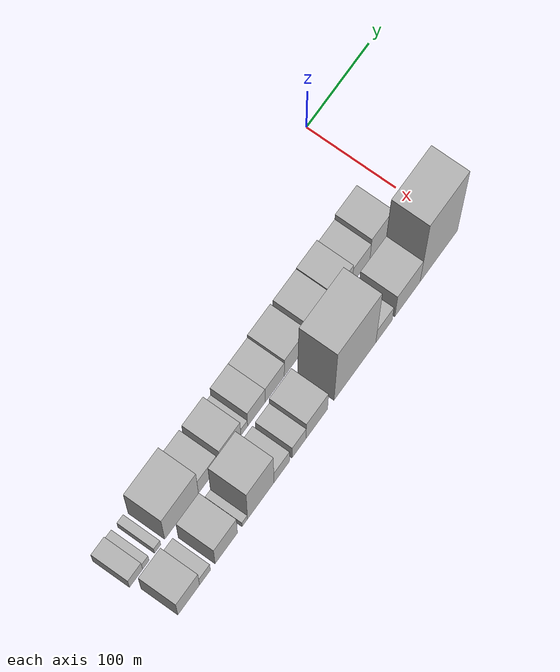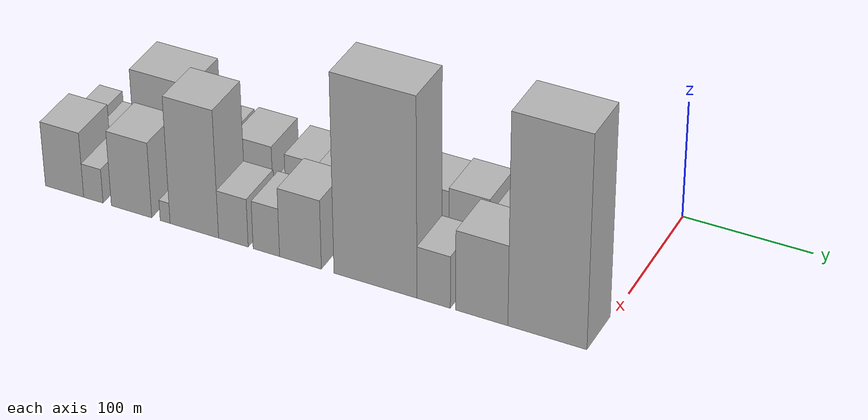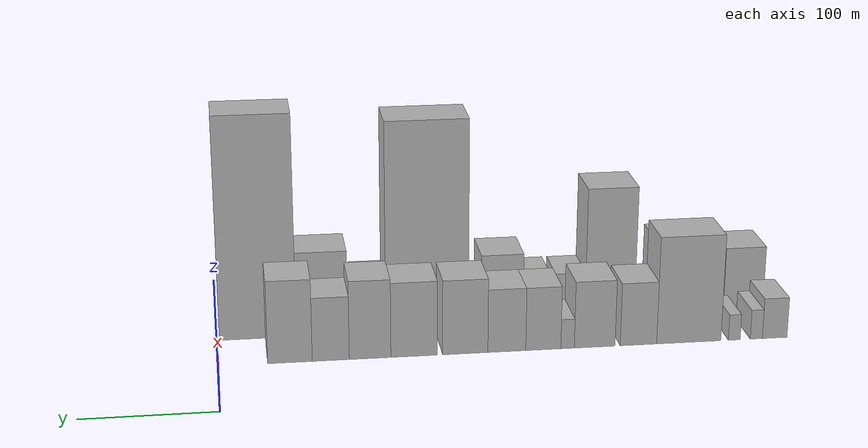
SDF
<sdf version="1.6">
 <world name="default">
  <model name="building_1">
   <static>1</static>
   <pose>100.0000 -428.1805 0 0.000000 0.000000 0.000000</pose>
   <link name="link">
    <pose>0 0 16.50 0 0 0</pose>
    <collision name="collision"><geometry><box><size>40.0000 19.6389 33.0000</size></box></geometry></collision>
    <visual name="visual">
     <cast_shadows>0</cast_shadows>
     <geometry><box><size>40.0000 19.6389 33.0000</size></box></geometry>
     <material>
      <script>
       <uri>model://HANNAS_wall/materials/scripts</uri>
       <uri>model://HANNAS_wall/materials/textures</uri>
       <name>vrc/HANNAS_wall</name>
      </script>
     </material>
    </visual>
   </link>
  </model>
  <model name="building_2">
   <static>1</static>
   <pose>100.0000 -413.5381 0 0.000000 0.000000 0.000000</pose>
   <link name="link">
    <pose>0 0 12.00 0 0 0</pose>
    <collision name="collision"><geometry><box><size>40.0000 9.6458 24.0000</size></box></geometry></collision>
    <visual name="visual">
     <cast_shadows>0</cast_shadows>
     <geometry><box><size>40.0000 9.6458 24.0000</size></box></geometry>
     <material>
      <script>
       <uri>model://HANNAS_wall/materials/scripts</uri>
       <uri>model://HANNAS_wall/materials/textures</uri>
       <name>vrc/HANNAS_wall</name>
      </script>
     </material>
    </visual>
   </link>
  </model>
  <model name="building_3">
   <static>1</static>
   <pose>100.0000 -396.0378 0 0.000000 0.000000 0.000000</pose>
   <link name="link">
    <pose>0 0 10.50 0 0 0</pose>
    <collision name="collision"><geometry><box><size>40.0000 9.3547 21.0000</size></box></geometry></collision>
    <visual name="visual">
     <cast_shadows>0</cast_shadows>
     <geometry><box><size>40.0000 9.3547 21.0000</size></box></geometry>
     <material>
      <script>
       <uri>model://HANNAS_wall/materials/scripts</uri>
       <uri>model://HANNAS_wall/materials/textures</uri>
       <name>vrc/HANNAS_wall</name>
      </script>
     </material>
    </visual>
   </link>
  </model>
  <model name="building_4">
   <static>1</static>
   <pose>100.0000 -360.0004 0 0.000000 0.000000 0.000000</pose>
   <link name="link">
    <pose>0 0 43.50 0 0 0</pose>
    <collision name="collision"><geometry><box><size>40.0000 50.7202 87.0000</size></box></geometry></collision>
    <visual name="visual">
     <cast_shadows>0</cast_shadows>
     <geometry><box><size>40.0000 50.7202 87.0000</size></box></geometry>
     <material>
      <script>
       <uri>model://HANNAS_wall/materials/scripts</uri>
       <uri>model://HANNAS_wall/materials/textures</uri>
       <name>vrc/HANNAS_wall</name>
      </script>
     </material>
    </visual>
   </link>
  </model>
  <model name="building_5">
   <static>1</static>
   <pose>100.0000 -320.3611 0 0.000000 0.000000 0.000000</pose>
   <link name="link">
    <pose>0 0 25.50 0 0 0</pose>
    <collision name="collision"><geometry><box><size>40.0000 28.5584 51.0000</size></box></geometry></collision>
    <visual name="visual">
     <cast_shadows>0</cast_shadows>
     <geometry><box><size>40.0000 28.5584 51.0000</size></box></geometry>
     <material>
      <script>
       <uri>model://HANNAS_wall/materials/scripts</uri>
       <uri>model://HANNAS_wall/materials/textures</uri>
       <name>vrc/HANNAS_wall</name>
      </script>
     </material>
    </visual>
   </link>
  </model>
  <model name="building_6">
   <static>1</static>
   <pose>100.0000 -286.1896 0 0.000000 0.000000 0.000000</pose>
   <link name="link">
    <pose>0 0 27.00 0 0 0</pose>
    <collision name="collision"><geometry><box><size>40.0000 31.7845 54.0000</size></box></geometry></collision>
    <visual name="visual">
     <cast_shadows>0</cast_shadows>
     <geometry><box><size>40.0000 31.7845 54.0000</size></box></geometry>
     <material>
      <script>
       <uri>model://HANNAS_wall/materials/scripts</uri>
       <uri>model://HANNAS_wall/materials/textures</uri>
       <name>vrc/HANNAS_wall</name>
      </script>
     </material>
    </visual>
   </link>
  </model>
  <model name="building_7">
   <static>1</static>
   <pose>100.0000 -265.0590 0 0.000000 0.000000 0.000000</pose>
   <link name="link">
    <pose>0 0 12.00 0 0 0</pose>
    <collision name="collision"><geometry><box><size>40.0000 10.4767 24.0000</size></box></geometry></collision>
    <visual name="visual">
     <cast_shadows>0</cast_shadows>
     <geometry><box><size>40.0000 10.4767 24.0000</size></box></geometry>
     <material>
      <script>
       <uri>model://HANNAS_wall/materials/scripts</uri>
       <uri>model://HANNAS_wall/materials/textures</uri>
       <name>vrc/HANNAS_wall</name>
      </script>
     </material>
    </visual>
   </link>
  </model>
  <model name="building_8">
   <static>1</static>
   <pose>100.0000 -246.2515 0 0.000000 0.000000 0.000000</pose>
   <link name="link">
    <pose>0 0 25.50 0 0 0</pose>
    <collision name="collision"><geometry><box><size>40.0000 27.1383 51.0000</size></box></geometry></collision>
    <visual name="visual">
     <cast_shadows>0</cast_shadows>
     <geometry><box><size>40.0000 27.1383 51.0000</size></box></geometry>
     <material>
      <script>
       <uri>model://HANNAS_wall/materials/scripts</uri>
       <uri>model://HANNAS_wall/materials/textures</uri>
       <name>vrc/HANNAS_wall</name>
      </script>
     </material>
    </visual>
   </link>
  </model>
  <model name="building_9">
   <static>1</static>
   <pose>100.0000 -218.0711 0 0.000000 0.000000 0.000000</pose>
   <link name="link">
    <pose>0 0 25.50 0 0 0</pose>
    <collision name="collision"><geometry><box><size>40.0000 29.2224 51.0000</size></box></geometry></collision>
    <visual name="visual">
     <cast_shadows>0</cast_shadows>
     <geometry><box><size>40.0000 29.2224 51.0000</size></box></geometry>
     <material>
      <script>
       <uri>model://HANNAS_wall/materials/scripts</uri>
       <uri>model://HANNAS_wall/materials/textures</uri>
       <name>vrc/HANNAS_wall</name>
      </script>
     </material>
    </visual>
   </link>
  </model>
  <model name="building_10">
   <static>1</static>
   <pose>100.0000 -186.1370 0 0.000000 0.000000 0.000000</pose>
   <link name="link">
    <pose>0 0 30.00 0 0 0</pose>
    <collision name="collision"><geometry><box><size>40.0000 34.6458 60.0000</size></box></geometry></collision>
    <visual name="visual">
     <cast_shadows>0</cast_shadows>
     <geometry><box><size>40.0000 34.6458 60.0000</size></box></geometry>
     <material>
      <script>
       <uri>model://HANNAS_wall/materials/scripts</uri>
       <uri>model://HANNAS_wall/materials/textures</uri>
       <name>vrc/HANNAS_wall</name>
      </script>
     </material>
    </visual>
   </link>
  </model>
  <model name="building_11">
   <static>1</static>
   <pose>100.0000 -147.0834 0 0.000000 0.000000 0.000000</pose>
   <link name="link">
    <pose>0 0 30.00 0 0 0</pose>
    <collision name="collision"><geometry><box><size>40.0000 35.4614 60.0000</size></box></geometry></collision>
    <visual name="visual">
     <cast_shadows>0</cast_shadows>
     <geometry><box><size>40.0000 35.4614 60.0000</size></box></geometry>
     <material>
      <script>
       <uri>model://HANNAS_wall/materials/scripts</uri>
       <uri>model://HANNAS_wall/materials/textures</uri>
       <name>vrc/HANNAS_wall</name>
      </script>
     </material>
    </visual>
   </link>
  </model>
  <model name="building_12">
   <static>1</static>
   <pose>100.0000 -113.5914 0 0.000000 0.000000 0.000000</pose>
   <link name="link">
    <pose>0 0 31.50 0 0 0</pose>
    <collision name="collision"><geometry><box><size>40.0000 31.5225 63.0000</size></box></geometry></collision>
    <visual name="visual">
     <cast_shadows>0</cast_shadows>
     <geometry><box><size>40.0000 31.5225 63.0000</size></box></geometry>
     <material>
      <script>
       <uri>model://HANNAS_wall/materials/scripts</uri>
       <uri>model://HANNAS_wall/materials/textures</uri>
       <name>vrc/HANNAS_wall</name>
      </script>
     </material>
    </visual>
   </link>
  </model>
  <model name="building_13">
   <static>1</static>
   <pose>100.0000 -83.8691 0 0.000000 0.000000 0.000000</pose>
   <link name="link">
    <pose>0 0 25.50 0 0 0</pose>
    <collision name="collision"><geometry><box><size>40.0000 27.9221 51.0000</size></box></geometry></collision>
    <visual name="visual">
     <cast_shadows>0</cast_shadows>
     <geometry><box><size>40.0000 27.9221 51.0000</size></box></geometry>
     <material>
      <script>
       <uri>model://HANNAS_wall/materials/scripts</uri>
       <uri>model://HANNAS_wall/materials/textures</uri>
       <name>vrc/HANNAS_wall</name>
      </script>
     </material>
    </visual>
   </link>
  </model>
  <model name="building_14">
   <static>1</static>
   <pose>100.0000 -53.1966 0 0.000000 0.000000 0.000000</pose>
   <link name="link">
    <pose>0 0 33.00 0 0 0</pose>
    <collision name="collision"><geometry><box><size>40.0000 33.4230 66.0000</size></box></geometry></collision>
    <visual name="visual">
     <cast_shadows>0</cast_shadows>
     <geometry><box><size>40.0000 33.4230 66.0000</size></box></geometry>
     <material>
      <script>
       <uri>model://HANNAS_wall/materials/scripts</uri>
       <uri>model://HANNAS_wall/materials/textures</uri>
       <name>vrc/HANNAS_wall</name>
      </script>
     </material>
    </visual>
   </link>
  </model>
  <model name="building_26">
   <static>1</static>
   <pose>149.0000 -416.7701 0 0.000000 0.000000 0.000000</pose>
   <link name="link">
    <pose>0 0 28.50 0 0 0</pose>
    <collision name="collision"><geometry><box><size>40.0000 32.4598 57.0000</size></box></geometry></collision>
    <visual name="visual">
     <cast_shadows>0</cast_shadows>
     <geometry><box><size>40.0000 32.4598 57.0000</size></box></geometry>
     <material>
      <script>
       <uri>model://HANNAS_wall/materials/scripts</uri>
       <uri>model://HANNAS_wall/materials/textures</uri>
       <name>vrc/HANNAS_wall</name>
      </script>
     </material>
    </visual>
   </link>
  </model>
  <model name="building_27">
   <static>1</static>
   <pose>149.0000 -392.3642 0 0.000000 0.000000 0.000000</pose>
   <link name="link">
    <pose>0 0 15.00 0 0 0</pose>
    <collision name="collision"><geometry><box><size>40.0000 16.3521 30.0000</size></box></geometry></collision>
    <visual name="visual">
     <cast_shadows>0</cast_shadows>
     <geometry><box><size>40.0000 16.3521 30.0000</size></box></geometry>
     <material>
      <script>
       <uri>model://HANNAS_wall/materials/scripts</uri>
       <uri>model://HANNAS_wall/materials/textures</uri>
       <name>vrc/HANNAS_wall</name>
      </script>
     </material>
    </visual>
   </link>
  </model>
  <model name="building_28">
   <static>1</static>
   <pose>149.0000 -360.3171 0 0.000000 0.000000 0.000000</pose>
   <link name="link">
    <pose>0 0 33.00 0 0 0</pose>
    <collision name="collision"><geometry><box><size>40.0000 33.7421 66.0000</size></box></geometry></collision>
    <visual name="visual">
     <cast_shadows>0</cast_shadows>
     <geometry><box><size>40.0000 33.7421 66.0000</size></box></geometry>
     <material>
      <script>
       <uri>model://HANNAS_wall/materials/scripts</uri>
       <uri>model://HANNAS_wall/materials/textures</uri>
       <name>vrc/HANNAS_wall</name>
      </script>
     </material>
    </visual>
   </link>
  </model>
  <model name="building_29">
   <static>1</static>
   <pose>149.0000 -332.3408 0 0.000000 0.000000 0.000000</pose>
   <link name="link">
    <pose>0 0 9.00 0 0 0</pose>
    <collision name="collision"><geometry><box><size>40.0000 8.2105 18.0000</size></box></geometry></collision>
    <visual name="visual">
     <cast_shadows>0</cast_shadows>
     <geometry><box><size>40.0000 8.2105 18.0000</size></box></geometry>
     <material>
      <script>
       <uri>model://HANNAS_wall/materials/scripts</uri>
       <uri>model://HANNAS_wall/materials/textures</uri>
       <name>vrc/HANNAS_wall</name>
      </script>
     </material>
    </visual>
   </link>
  </model>
  <model name="building_30">
   <static>1</static>
   <pose>149.0000 -308.2875 0 0.000000 0.000000 0.000000</pose>
   <link name="link">
    <pose>0 0 55.50 0 0 0</pose>
    <collision name="collision"><geometry><box><size>40.0000 39.8962 111.0000</size></box></geometry></collision>
    <visual name="visual">
     <cast_shadows>0</cast_shadows>
     <geometry><box><size>40.0000 39.8962 111.0000</size></box></geometry>
     <material>
      <script>
       <uri>model://HANNAS_wall/materials/scripts</uri>
       <uri>model://HANNAS_wall/materials/textures</uri>
       <name>vrc/HANNAS_wall</name>
      </script>
     </material>
    </visual>
   </link>
  </model>
  <model name="building_31">
   <static>1</static>
   <pose>149.0000 -276.2975 0 0.000000 0.000000 0.000000</pose>
   <link name="link">
    <pose>0 0 21.00 0 0 0</pose>
    <collision name="collision"><geometry><box><size>40.0000 24.0838 42.0000</size></box></geometry></collision>
    <visual name="visual">
     <cast_shadows>0</cast_shadows>
     <geometry><box><size>40.0000 24.0838 42.0000</size></box></geometry>
     <material>
      <script>
       <uri>model://HANNAS_wall/materials/scripts</uri>
       <uri>model://HANNAS_wall/materials/textures</uri>
       <name>vrc/HANNAS_wall</name>
      </script>
     </material>
    </visual>
   </link>
  </model>
  <model name="building_32">
   <static>1</static>
   <pose>149.0000 -249.6036 0 0.000000 0.000000 0.000000</pose>
   <link name="link">
    <pose>0 0 21.00 0 0 0</pose>
    <collision name="collision"><geometry><box><size>40.0000 21.3040 42.0000</size></box></geometry></collision>
    <visual name="visual">
     <cast_shadows>0</cast_shadows>
     <geometry><box><size>40.0000 21.3040 42.0000</size></box></geometry>
     <material>
      <script>
       <uri>model://HANNAS_wall/materials/scripts</uri>
       <uri>model://HANNAS_wall/materials/textures</uri>
       <name>vrc/HANNAS_wall</name>
      </script>
     </material>
    </visual>
   </link>
  </model>
  <model name="building_33">
   <static>1</static>
   <pose>149.0000 -222.2286 0 0.000000 0.000000 0.000000</pose>
   <link name="link">
    <pose>0 0 30.00 0 0 0</pose>
    <collision name="collision"><geometry><box><size>40.0000 33.4460 60.0000</size></box></geometry></collision>
    <visual name="visual">
     <cast_shadows>0</cast_shadows>
     <geometry><box><size>40.0000 33.4460 60.0000</size></box></geometry>
     <material>
      <script>
       <uri>model://HANNAS_wall/materials/scripts</uri>
       <uri>model://HANNAS_wall/materials/textures</uri>
       <name>vrc/HANNAS_wall</name>
      </script>
     </material>
    </visual>
   </link>
  </model>
  <model name="building_34">
   <static>1</static>
   <pose>149.0000 -162.9360 0 0.000000 0.000000 0.000000</pose>
   <link name="link">
    <pose>0 0 85.50 0 0 0</pose>
    <collision name="collision"><geometry><box><size>40.0000 65.1391 171.0000</size></box></geometry></collision>
    <visual name="visual">
     <cast_shadows>0</cast_shadows>
     <geometry><box><size>40.0000 65.1391 171.0000</size></box></geometry>
     <material>
      <script>
       <uri>model://HANNAS_wall/materials/scripts</uri>
       <uri>model://HANNAS_wall/materials/textures</uri>
       <name>vrc/HANNAS_wall</name>
      </script>
     </material>
    </visual>
   </link>
  </model>
  <model name="building_35">
   <static>1</static>
   <pose>149.0000 -117.4786 0 0.000000 0.000000 0.000000</pose>
   <link name="link">
    <pose>0 0 22.50 0 0 0</pose>
    <collision name="collision"><geometry><box><size>40.0000 25.7757 45.0000</size></box></geometry></collision>
    <visual name="visual">
     <cast_shadows>0</cast_shadows>
     <geometry><box><size>40.0000 25.7757 45.0000</size></box></geometry>
     <material>
      <script>
       <uri>model://HANNAS_wall/materials/scripts</uri>
       <uri>model://HANNAS_wall/materials/textures</uri>
       <name>vrc/HANNAS_wall</name>
      </script>
     </material>
    </visual>
   </link>
  </model>
  <model name="building_36">
   <static>1</static>
   <pose>149.0000 -80.6146 0 0.000000 0.000000 0.000000</pose>
   <link name="link">
    <pose>0 0 34.50 0 0 0</pose>
    <collision name="collision"><geometry><box><size>40.0000 39.9522 69.0000</size></box></geometry></collision>
    <visual name="visual">
     <cast_shadows>0</cast_shadows>
     <geometry><box><size>40.0000 39.9522 69.0000</size></box></geometry>
     <material>
      <script>
       <uri>model://HANNAS_wall/materials/scripts</uri>
       <uri>model://HANNAS_wall/materials/textures</uri>
       <name>vrc/HANNAS_wall</name>
      </script>
     </material>
    </visual>
   </link>
  </model>
  <model name="building_37">
   <static>1</static>
   <pose>149.0000 -30.9183 0 0.000000 0.000000 0.000000</pose>
   <link name="link">
    <pose>0 0 90.00 0 0 0</pose>
    <collision name="collision"><geometry><box><size>40.0000 59.4406 180.0000</size></box></geometry></collision>
    <visual name="visual">
     <cast_shadows>0</cast_shadows>
     <geometry><box><size>40.0000 59.4406 180.0000</size></box></geometry>
     <material>
      <script>
       <uri>model://HANNAS_wall/materials/scripts</uri>
       <uri>model://HANNAS_wall/materials/textures</uri>
       <name>vrc/HANNAS_wall</name>
      </script>
     </material>
    </visual>
   </link>
  </model>
 </world>
</sdf>
